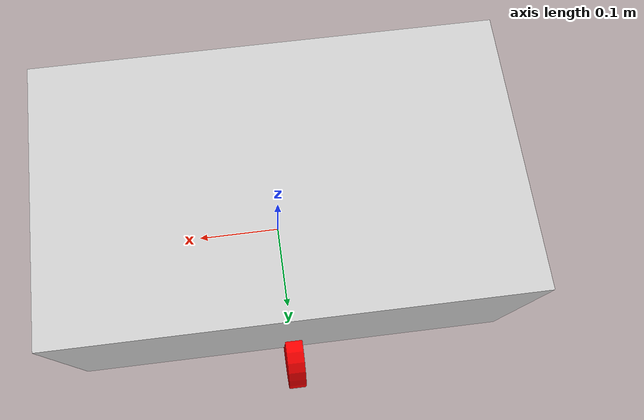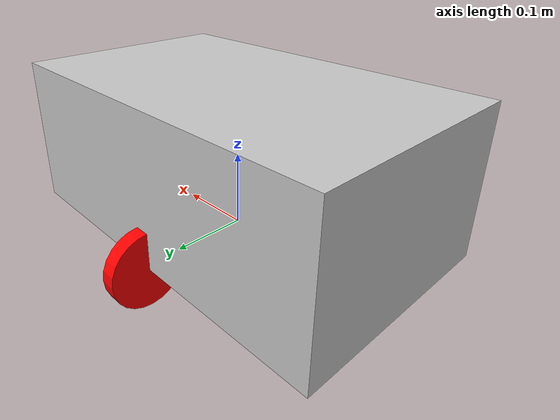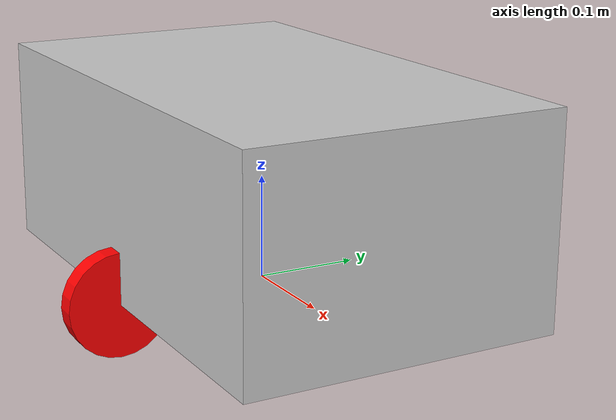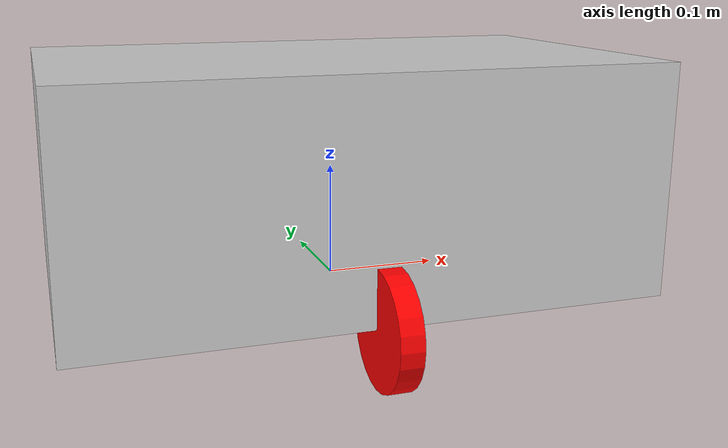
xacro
<?xml version="1.0"?>
<robot name="my_robot" xmlns:xacro="http://ros.org/wiki/xacro">
  <!-- Parameters -->
  <xacro:property name="wheel_radius" value="0.05"/>
  <xacro:property name="wheel_width" value="0.02"/>
  <xacro:property name="base_length" value="0.5"/>
  <xacro:property name="base_width" value="0.3"/>
  <xacro:property name="base_height" value="0.2"/>

  <!-- Base Link -->
  <link name="base_link">
    <inertial>
      <mass value="5.0"/>
      <origin xyz="0 0 0.1" rpy="0 0 0"/>
      <inertia ixx="0.05" ixy="0" ixz="0" iyy="0.05" iyz="0" izz="0.05"/>
    </inertial>
    <visual>
      <geometry>
        <box size="${base_length} ${base_width} ${base_height}"/>
      </geometry>
      <origin xyz="0 0 ${base_height/2}" rpy="0 0 0"/>
      <material name="white">
        <color rgba="0.8 0.8 0.8 1.0"/>
      </material>
    </visual>
    <collision>
      <geometry>
        <box size="${base_length} ${base_width} ${base_height}"/>
      </geometry>
      <origin xyz="0 0 ${base_height/2}" rpy="0 0 0"/>
    </collision>
  </link>

  <!-- Left Wheel -->
  <link name="left_wheel">
    <inertial>
      <mass value="0.2"/>
      <origin xyz="0 0 0" rpy="0 0 0"/>
      <inertia ixx="0.001" ixy="0" ixz="0" iyy="0.001" iyz="0" izz="0.001"/>
    </inertial>
    <visual>
      <geometry>
        <cylinder radius="${wheel_radius}" length="${wheel_width}"/>
      </geometry>
      <origin xyz="0 0 0" rpy="0 1.5708 0"/>
      <material name="red">
        <color rgba="1 0 0 1"/>
      </material>
    </visual>
    <collision>
      <geometry>
        <cylinder radius="${wheel_radius}" length="${wheel_width}"/>
      </geometry>
      <origin xyz="0 0 0" rpy="0 1.5708 0"/>
    </collision>
  </link>

  <!-- Right Wheel -->
  <link name="right_wheel">
    <inertial>
      <mass value="0.2"/>
      <origin xyz="0 0 0" rpy="0 0 0"/>
      <inertia ixx="0.001" ixy="0" ixz="0" iyy="0.001" iyz="0" izz="0.001"/>
    </inertial>
    <visual>
      <geometry>
        <cylinder radius="${wheel_radius}" length="${wheel_width}"/>
      </geometry>
      <origin xyz="0 0 0" rpy="0 1.5708 0"/>
      <material name="red">
        <color rgba="1 0 0 1"/>
      </material>
    </visual>
    <collision>
      <geometry>
        <cylinder radius="${wheel_radius}" length="${wheel_width}"/>
      </geometry>
      <origin xyz="0 0 0" rpy="0 1.5708 0"/>
    </collision>
  </link>

  <!-- Joints for Wheels -->
  <joint name="left_wheel_joint" type="continuous">
    <parent link="base_link"/>
    <child link="left_wheel"/>
    <!-- Position the left wheel on the left side of the robot -->
    <origin xyz="0  ${base_width/2} 0" rpy="0 0 0"/>
    <axis xyz="0 1 0"/>
  </joint>

  <joint name="right_wheel_joint" type="continuous">
    <parent link="base_link"/>
    <child link="right_wheel"/>
    <!-- Position the right wheel on the right side of the robot -->
    <origin xyz="0 -${base_width/2} 0" rpy="0 0 0"/>
    <axis xyz="0 1 0"/>
  </joint>

  <!-- Gazebo Diff Drive Plugin -->
  <gazebo>
    <plugin name="diff_drive_controller" filename="libgazebo_ros_diff_drive.so">
      <ros>
        <namespace>/</namespace>
      </ros>
      <left_joint>left_wheel_joint</left_joint>
      <right_joint>right_wheel_joint</right_joint>
      <wheel_separation>${base_width}</wheel_separation>
      <wheel_radius>${wheel_radius}</wheel_radius>
      <wheel_diameter>${wheel_radius*2}</wheel_diameter> <!-- Added wheel_diameter -->
      <command_topic>cmd_vel</command_topic>
      <odometry_topic>odom</odometry_topic>
      <odometry_frame>odom</odometry_frame>
      <robot_base_frame>base_link</robot_base_frame>
      <publish_odom>true</publish_odom>
      <publish_odom_tf>true</publish_odom_tf>
    </plugin>
  </gazebo>

</robot>
